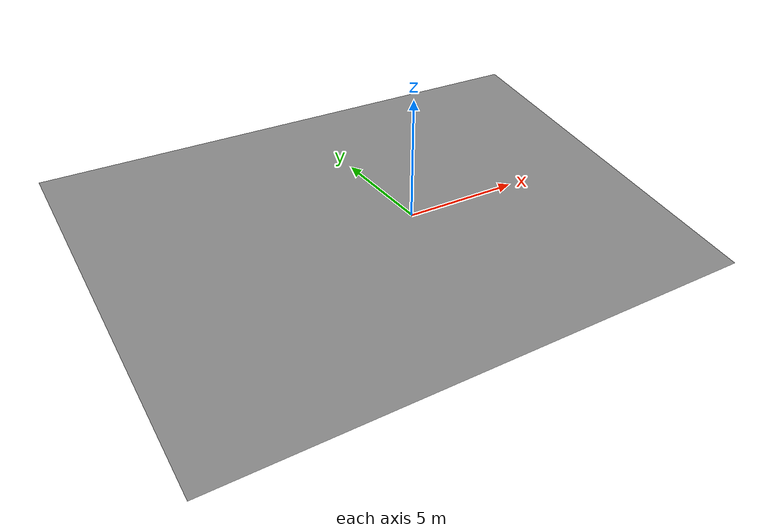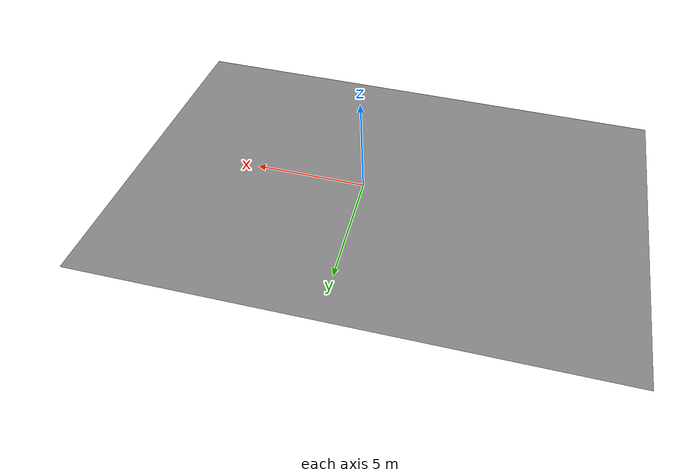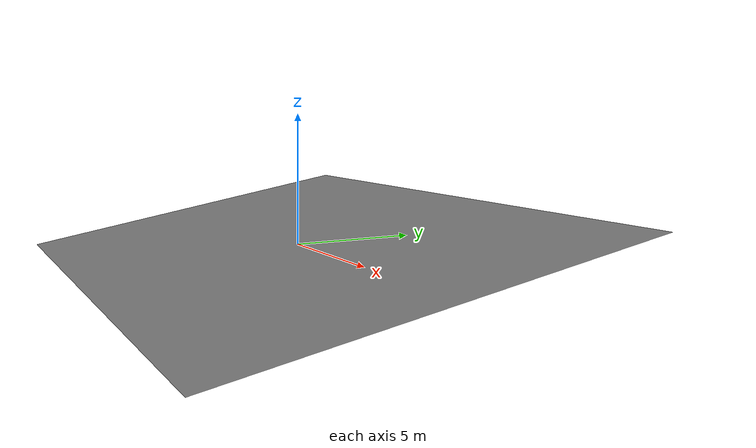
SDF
<?xml version="1.0" ?>
<sdf version="1.5">
<!-- Custom ground plane -->
  <model name="tol_ground">
    <static>true</static>
    <link name="link">
      <collision name="collision">
        <geometry>
          <mesh>
            <uri>model://tilted10/meshes/tilted10.dae</uri>
          </mesh>
        </geometry>
        <surface>
          <friction>
            <ode>
              <!-- RobogenCollision.cpp -->
              <mu>1</mu>
              <mu2>1</mu2>
              <slip1>0.01</slip1>
              <slip2>0.01</slip2>
            </ode>
          </friction>
          <contact>
            <ode>
              <kd>9.000000e+04</kd>
              <kp>2.000000e+06</kp>
            </ode>
          </contact>
        </surface>
      </collision>
      <visual name="visual">
        <cast_shadows>false</cast_shadows>
        <geometry>
          <mesh>
            <uri>model://tilted10/meshes/tilted10.dae</uri>
          </mesh>
        </geometry>
        <material>
          <ambient>0.50 0.50 0.50 1.00</ambient>
          <diffuse>0.50 0.50 0.50 1.00</diffuse>
          <specular>0.1 0.1 0.1 1.00</specular>
        </material>
      </visual>
    </link>
  </model>
<!-- END Custom ground plane -->
</sdf>
